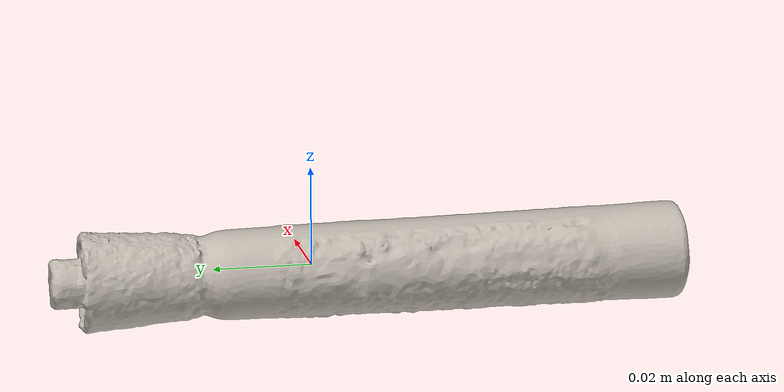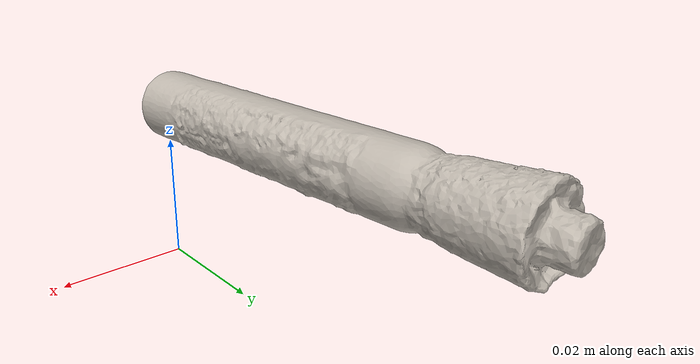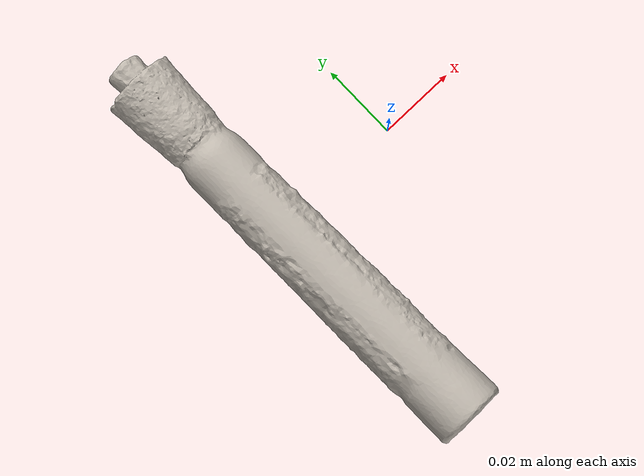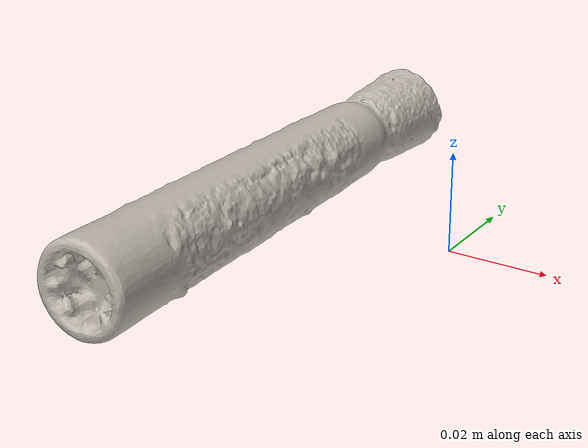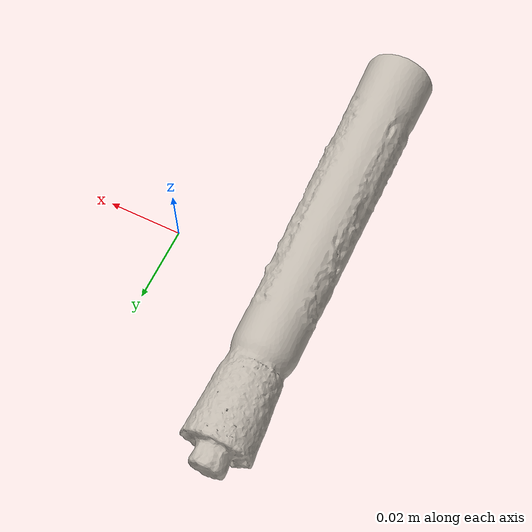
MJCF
<mujoco model="large_marker">
  <compiler angle="radian" meshdir="assets" texturedir="assets"/>
    <default>
        <default class="ycb_col">
            <geom contype="1" conaffinity="1" group="3" rgba=".4 .5 .6 1"/>
        </default>
        <default class="ycb_viz">
            <geom contype="0" conaffinity="0" type="mesh" mass="0"/>
        </default>
    </default>
  <asset>
    <texture type="2d" name="large_marker_tex" file="texture_map.png"/>
    <material name="large_marker_mat" texture="large_marker_tex" specular="0.5" shininess="0.5"/>
    <mesh file="textured.obj" name="large_marker"/>
    <mesh file="textured_collision_0.obj" name="large_marker_collision_0"/>
    <mesh file="textured_collision_1.obj" name="large_marker_collision_1"/>
    <mesh file="textured_collision_2.obj" name="large_marker_collision_2"/>
  </asset>
  <worldbody>
      <geom material="large_marker_mat" mesh="large_marker" class="ycb_viz"/>
      <geom mesh="large_marker_collision_0" class="ycb_col" conaffinity="1" condim="4" friction="0.1 0.1 0.1" mass="0.012773550179650863" rgba="1 1 1 1" solimp="0.99 0.99 0.01" solref=".001 0.1" type="mesh" group="3"/>
      <geom mesh="large_marker_collision_1" class="ycb_col" conaffinity="1" condim="4" friction="0.1 0.1 0.1" mass="0.003029209406567037" rgba="1 1 1 1" solimp="0.99 0.99 0.01" solref=".001 0.1" type="mesh" group="3"/>
      <geom mesh="large_marker_collision_2" class="ycb_col" conaffinity="1" condim="4" friction="0.1 0.1 0.1" mass="0.00019724041378210223" rgba="1 1 1 1" solimp="0.99 0.99 0.01" solref=".001 0.1" type="mesh" group="3"/>
  </worldbody>
</mujoco>
